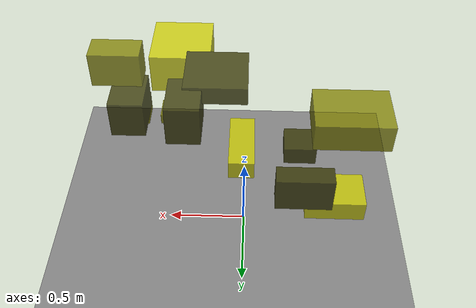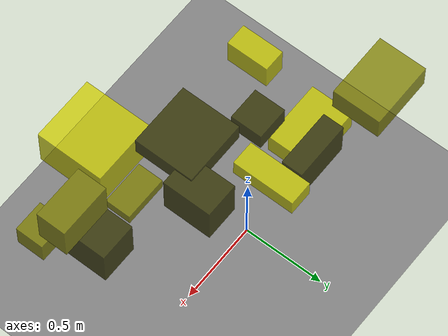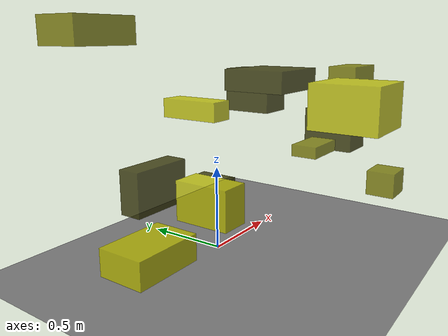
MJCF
<?xml version="1.0"?>
<mujoco model="obstacle_scene">
  <compiler angle="radian" coordinate="local"/>
  <option timestep="0.001" gravity="0 0 -9.81"/>

  <asset>
    <material name="obstacle_mat" rgba="0.8 0.8 0.0 0.8"/>
    <material name="ground_mat" rgba="0.5 0.5 0.5 1"/>
  </asset>

  <worldbody>
    <!-- Ground plane -->
    <geom name="ground" type="plane" size="3 3 0.1" material="ground_mat"/>

    <!-- Obstacles -->
    <body name="obstacle_0" pos="-0.359535 -0.211640 0.494850">
      <geom name="obs_0" type="box" size="0.103088 0.099306 0.061430" rgba="0.2 0.2 0.0 0.8"/>
    </body>
    <body name="obstacle_1" pos="-0.531266 0.410079 1.284289">
      <geom name="obs_1" type="box" size="0.194527 0.142819 0.076391" rgba="0.5 0.5 0.0 0.8"/>
    </body>
    <body name="obstacle_2" pos="0.018034 0.163077 0.832874">
      <geom name="obs_2" type="box" size="0.073038 0.189922 0.056621" rgba="0.8 0.8 0.0 0.8"/>
    </body>
    <body name="obstacle_3" pos="0.365934 -0.031439 0.930132">
      <geom name="obs_3" type="box" size="0.103287 0.147392 0.129442" rgba="0.2 0.2 0.0 0.8"/>
    </body>
    <body name="obstacle_4" pos="0.429649 -0.413594 0.592089">
      <geom name="obs_4" type="box" size="0.135501 0.078227 0.034596" rgba="0.5 0.5 0.0 0.8"/>
    </body>
    <body name="obstacle_5" pos="-0.624749 -0.439836 0.558079">
      <geom name="obs_5" type="box" size="0.068210 0.132217 0.090685" rgba="0.8 0.8 0.0 0.8"/>
    </body>
    <body name="obstacle_6" pos="0.773836 -0.393777 0.662001">
      <geom name="obs_6" type="box" size="0.113593 0.160026 0.130212" rgba="0.2 0.2 0.0 0.8"/>
    </body>
    <body name="obstacle_7" pos="0.809737 -0.740529 0.340426">
      <geom name="obs_7" type="box" size="0.097654 0.088047 0.077865" rgba="0.5 0.5 0.0 0.8"/>
    </body>
    <body name="obstacle_8" pos="0.431907 -0.665475 0.869035">
      <geom name="obs_8" type="box" size="0.195931 0.205439 0.133681" rgba="0.8 0.8 0.0 0.8"/>
    </body>
    <body name="obstacle_9" pos="-0.377229 0.138274 0.463237">
      <geom name="obs_9" type="box" size="0.180465 0.065229 0.122351" rgba="0.2 0.2 0.0 0.8"/>
    </body>
    <body name="obstacle_10" pos="0.838199 -0.471079 0.948619">
      <geom name="obs_10" type="box" size="0.162984 0.089785 0.117857" rgba="0.5 0.5 0.0 0.8"/>
    </body>
    <body name="obstacle_11" pos="-0.603199 -0.037994 0.199063">
      <geom name="obs_11" type="box" size="0.196555 0.135424 0.073516" rgba="0.8 0.8 0.0 0.8"/>
    </body>
    <body name="obstacle_12" pos="0.182906 -0.252678 1.017002">
      <geom name="obs_12" type="box" size="0.193902 0.182088 0.059114" rgba="0.2 0.2 0.0 0.8"/>
    </body>
  </worldbody>
</mujoco>
